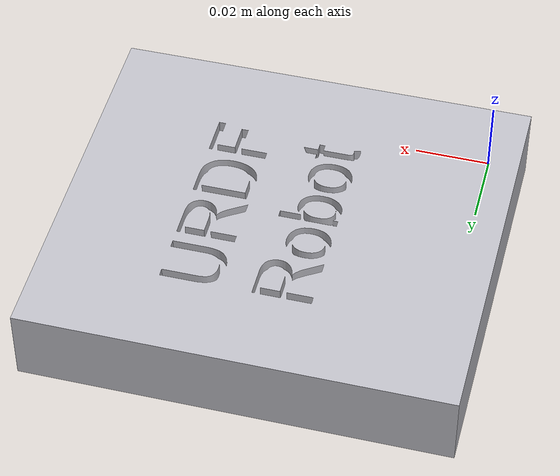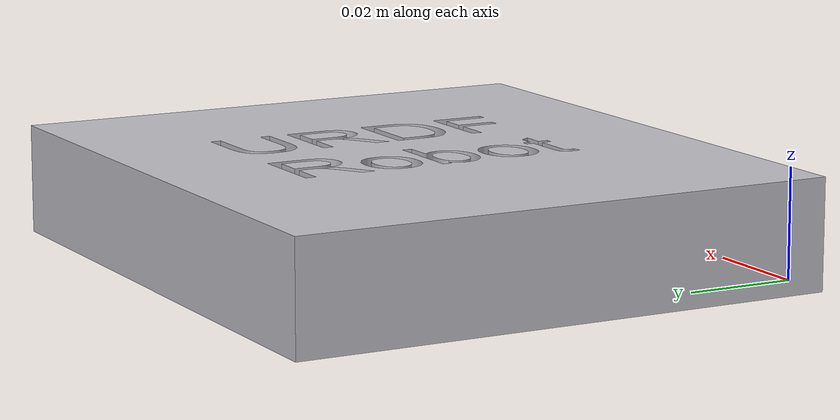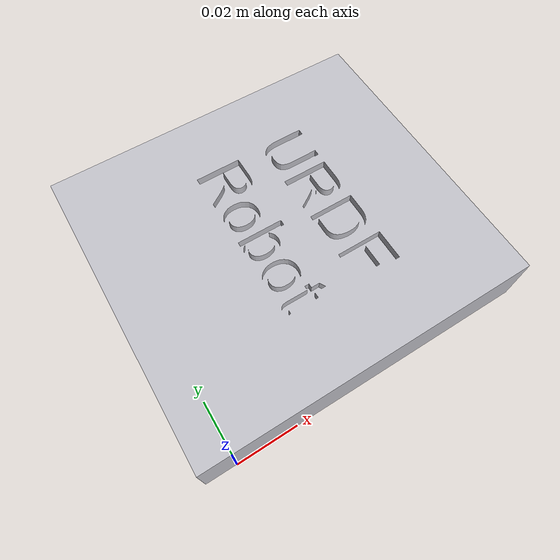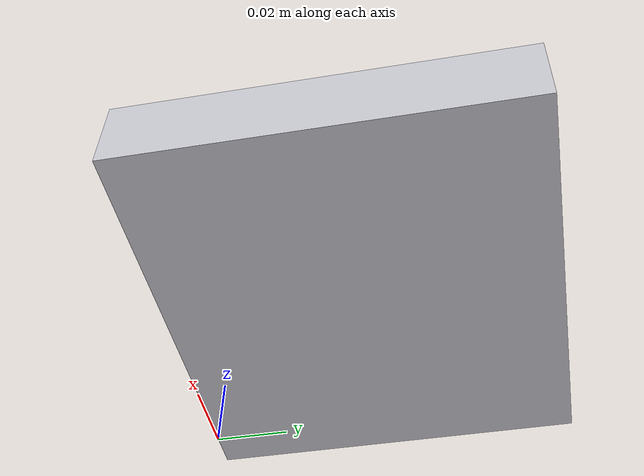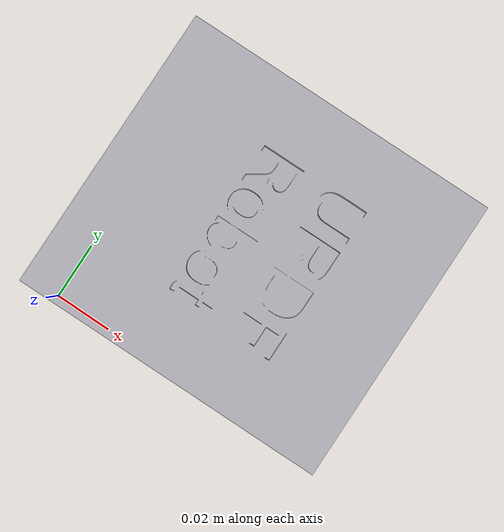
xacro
<?xml version="1.0" ?>
<robot name="test1" xmlns:xacro="http://www.ros.org/wiki/xacro">

<xacro:include filename="$(find test1_description)/urdf/materials.xacro" />
<xacro:include filename="$(find test1_description)/urdf/test1.trans" />
<xacro:include filename="$(find test1_description)/urdf/test1.gazebo" />
<link name="base_link">
  <inertial>
    <origin rpy="0 0 0" xyz="0.04496148005506649 0.04998786931698256 0.009933179123022308"/>
    <mass value="1.7135290616086671"/>
    <inertia ixx="0.001492" ixy="-0.0" ixz="1e-06" iyy="0.001795" iyz="0.0" izz="0.003174"/>
  </inertial>
  <visual>
    <origin rpy="0 0 0" xyz="0 0 0"/>
    <geometry>
      <mesh filename="package://test1_description/meshes/base_link.stl" scale="0.001 0.001 0.001"/>
    </geometry>
    <material name="silver"/>
  </visual>
  <collision>
    <origin rpy="0 0 0" xyz="0 0 0"/>
    <geometry>
      <mesh filename="package://test1_description/meshes/base_link.stl" scale="0.001 0.001 0.001"/>
    </geometry>
  </collision>
</link>

</robot>

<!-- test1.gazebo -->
<robot name="test1" xmlns:xacro="http://www.ros.org/wiki/xacro" >

<xacro:property name="body_color" value="Gazebo/Silver" />

<gazebo>
  <plugin filename="libgazebo_ros_control.so" name="control"/>
</gazebo>
<gazebo reference="base_link">
  <material>${body_color}</material>
  <mu1>0.2</mu1>
  <mu2>0.2</mu2>
  <selfCollide>true</selfCollide>
  <gravity>true</gravity>
</gazebo>

</robot>
